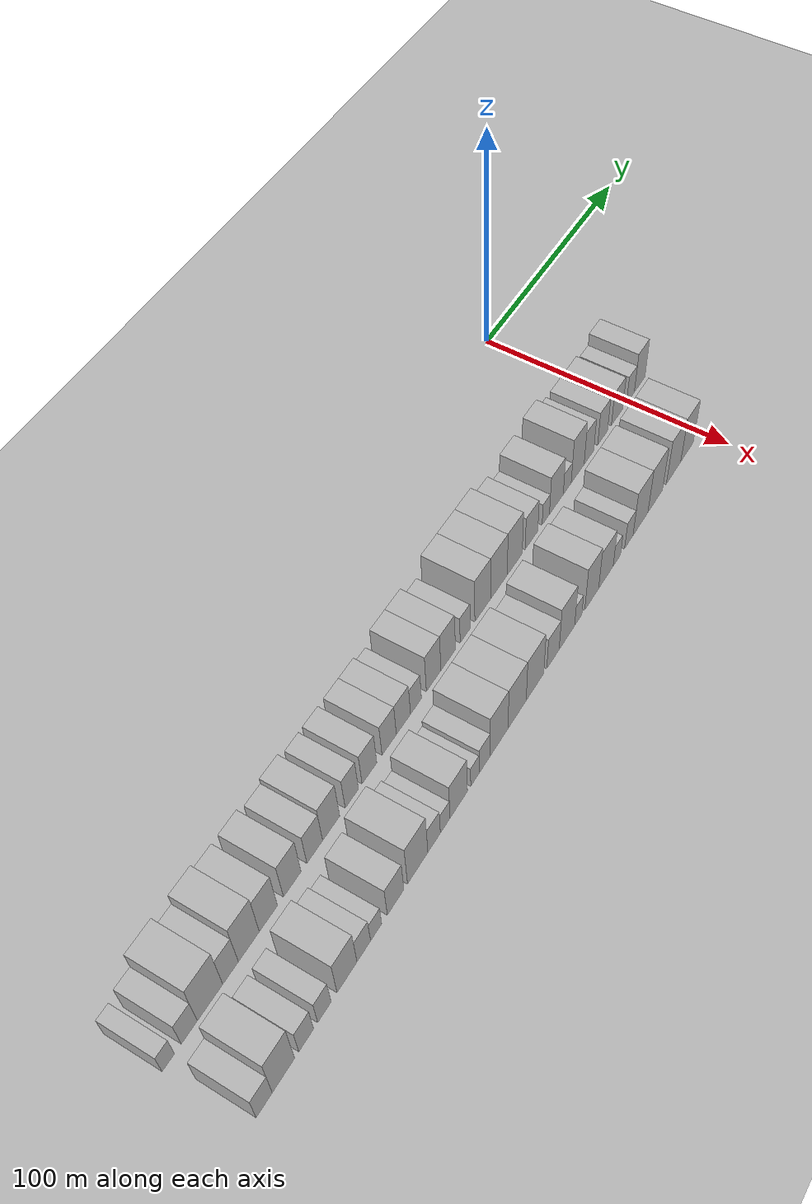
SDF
<sdf version="1.6">
 <world name="default">
  <include><name>ground_plane_1</name><uri>model://HANNAS_ground_plane</uri></include>
  <include>
   <name>ground_plane_2</name>
   <uri>model://HANNAS_ground_plane</uri>
   <pose>100 0 0  0 0 0</pose>
  </include>
  <model name="building_1">
   <static>1</static>
   <pose>50.0000 -275.2284 0 0.000000 0.000000 0.000000</pose>
   <link name="link">
    <pose>0 0 6.00 0 0 0</pose>
    <collision name="collision"><geometry><box><size>20.0000 5.5433 12.0000</size></box></geometry></collision>
    <visual name="visual">
     <cast_shadows>0</cast_shadows>
     <geometry><box><size>20.0000 5.5433 12.0000</size></box></geometry>
     <material>
      <script>
       <uri>model://HANNAS_wall/materials/scripts</uri>
       <uri>model://HANNAS_wall/materials/textures</uri>
       <name>vrc/HANNAS_wall</name>
      </script>
     </material>
    </visual>
   </link>
  </model>
  <model name="building_2">
   <static>1</static>
   <pose>50.0000 -265.7888 0 0.000000 0.000000 0.000000</pose>
   <link name="link">
    <pose>0 0 7.50 0 0 0</pose>
    <collision name="collision"><geometry><box><size>20.0000 7.3357 15.0000</size></box></geometry></collision>
    <visual name="visual">
     <cast_shadows>0</cast_shadows>
     <geometry><box><size>20.0000 7.3357 15.0000</size></box></geometry>
     <material>
      <script>
       <uri>model://HANNAS_wall/materials/scripts</uri>
       <uri>model://HANNAS_wall/materials/textures</uri>
       <name>vrc/HANNAS_wall</name>
      </script>
     </material>
    </visual>
   </link>
  </model>
  <model name="building_3">
   <static>1</static>
   <pose>50.0000 -256.1935 0 0.000000 0.000000 0.000000</pose>
   <link name="link">
    <pose>0 0 12.00 0 0 0</pose>
    <collision name="collision"><geometry><box><size>20.0000 11.8549 24.0000</size></box></geometry></collision>
    <visual name="visual">
     <cast_shadows>0</cast_shadows>
     <geometry><box><size>20.0000 11.8549 24.0000</size></box></geometry>
     <material>
      <script>
       <uri>model://HANNAS_wall/materials/scripts</uri>
       <uri>model://HANNAS_wall/materials/textures</uri>
       <name>vrc/HANNAS_wall</name>
      </script>
     </material>
    </visual>
   </link>
  </model>
  <model name="building_4">
   <static>1</static>
   <pose>50.0000 -246.5376 0 0.000000 0.000000 0.000000</pose>
   <link name="link">
    <pose>0 0 9.00 0 0 0</pose>
    <collision name="collision"><geometry><box><size>20.0000 7.4569 18.0000</size></box></geometry></collision>
    <visual name="visual">
     <cast_shadows>0</cast_shadows>
     <geometry><box><size>20.0000 7.4569 18.0000</size></box></geometry>
     <material>
      <script>
       <uri>model://HANNAS_wall/materials/scripts</uri>
       <uri>model://HANNAS_wall/materials/textures</uri>
       <name>vrc/HANNAS_wall</name>
      </script>
     </material>
    </visual>
   </link>
  </model>
  <model name="building_5">
   <static>1</static>
   <pose>50.0000 -237.7016 0 0.000000 0.000000 0.000000</pose>
   <link name="link">
    <pose>0 0 12.00 0 0 0</pose>
    <collision name="collision"><geometry><box><size>20.0000 10.2150 24.0000</size></box></geometry></collision>
    <visual name="visual">
     <cast_shadows>0</cast_shadows>
     <geometry><box><size>20.0000 10.2150 24.0000</size></box></geometry>
     <material>
      <script>
       <uri>model://HANNAS_wall/materials/scripts</uri>
       <uri>model://HANNAS_wall/materials/textures</uri>
       <name>vrc/HANNAS_wall</name>
      </script>
     </material>
    </visual>
   </link>
  </model>
  <model name="building_6">
   <static>1</static>
   <pose>50.0000 -228.0764 0 0.000000 0.000000 0.000000</pose>
   <link name="link">
    <pose>0 0 10.50 0 0 0</pose>
    <collision name="collision"><geometry><box><size>20.0000 9.0354 21.0000</size></box></geometry></collision>
    <visual name="visual">
     <cast_shadows>0</cast_shadows>
     <geometry><box><size>20.0000 9.0354 21.0000</size></box></geometry>
     <material>
      <script>
       <uri>model://HANNAS_wall/materials/scripts</uri>
       <uri>model://HANNAS_wall/materials/textures</uri>
       <name>vrc/HANNAS_wall</name>
      </script>
     </material>
    </visual>
   </link>
  </model>
  <model name="building_7">
   <static>1</static>
   <pose>50.0000 -216.0344 0 0.000000 0.000000 0.000000</pose>
   <link name="link">
    <pose>0 0 10.50 0 0 0</pose>
    <collision name="collision"><geometry><box><size>20.0000 9.0486 21.0000</size></box></geometry></collision>
    <visual name="visual">
     <cast_shadows>0</cast_shadows>
     <geometry><box><size>20.0000 9.0486 21.0000</size></box></geometry>
     <material>
      <script>
       <uri>model://HANNAS_wall/materials/scripts</uri>
       <uri>model://HANNAS_wall/materials/textures</uri>
       <name>vrc/HANNAS_wall</name>
      </script>
     </material>
    </visual>
   </link>
  </model>
  <model name="building_8">
   <static>1</static>
   <pose>50.0000 -204.3660 0 0.000000 0.000000 0.000000</pose>
   <link name="link">
    <pose>0 0 9.00 0 0 0</pose>
    <collision name="collision"><geometry><box><size>20.0000 8.2883 18.0000</size></box></geometry></collision>
    <visual name="visual">
     <cast_shadows>0</cast_shadows>
     <geometry><box><size>20.0000 8.2883 18.0000</size></box></geometry>
     <material>
      <script>
       <uri>model://HANNAS_wall/materials/scripts</uri>
       <uri>model://HANNAS_wall/materials/textures</uri>
       <name>vrc/HANNAS_wall</name>
      </script>
     </material>
    </visual>
   </link>
  </model>
  <model name="building_9">
   <static>1</static>
   <pose>50.0000 -195.6271 0 0.000000 0.000000 0.000000</pose>
   <link name="link">
    <pose>0 0 10.50 0 0 0</pose>
    <collision name="collision"><geometry><box><size>20.0000 9.1893 21.0000</size></box></geometry></collision>
    <visual name="visual">
     <cast_shadows>0</cast_shadows>
     <geometry><box><size>20.0000 9.1893 21.0000</size></box></geometry>
     <material>
      <script>
       <uri>model://HANNAS_wall/materials/scripts</uri>
       <uri>model://HANNAS_wall/materials/textures</uri>
       <name>vrc/HANNAS_wall</name>
      </script>
     </material>
    </visual>
   </link>
  </model>
  <model name="building_10">
   <static>1</static>
   <pose>50.0000 -184.3791 0 0.000000 0.000000 0.000000</pose>
   <link name="link">
    <pose>0 0 9.00 0 0 0</pose>
    <collision name="collision"><geometry><box><size>20.0000 7.3068 18.0000</size></box></geometry></collision>
    <visual name="visual">
     <cast_shadows>0</cast_shadows>
     <geometry><box><size>20.0000 7.3068 18.0000</size></box></geometry>
     <material>
      <script>
       <uri>model://HANNAS_wall/materials/scripts</uri>
       <uri>model://HANNAS_wall/materials/textures</uri>
       <name>vrc/HANNAS_wall</name>
      </script>
     </material>
    </visual>
   </link>
  </model>
  <model name="building_11">
   <static>1</static>
   <pose>50.0000 -174.5817 0 0.000000 0.000000 0.000000</pose>
   <link name="link">
    <pose>0 0 9.00 0 0 0</pose>
    <collision name="collision"><geometry><box><size>20.0000 8.2879 18.0000</size></box></geometry></collision>
    <visual name="visual">
     <cast_shadows>0</cast_shadows>
     <geometry><box><size>20.0000 8.2879 18.0000</size></box></geometry>
     <material>
      <script>
       <uri>model://HANNAS_wall/materials/scripts</uri>
       <uri>model://HANNAS_wall/materials/textures</uri>
       <name>vrc/HANNAS_wall</name>
      </script>
     </material>
    </visual>
   </link>
  </model>
  <model name="building_12">
   <static>1</static>
   <pose>50.0000 -163.2917 0 0.000000 0.000000 0.000000</pose>
   <link name="link">
    <pose>0 0 9.00 0 0 0</pose>
    <collision name="collision"><geometry><box><size>20.0000 8.2921 18.0000</size></box></geometry></collision>
    <visual name="visual">
     <cast_shadows>0</cast_shadows>
     <geometry><box><size>20.0000 8.2921 18.0000</size></box></geometry>
     <material>
      <script>
       <uri>model://HANNAS_wall/materials/scripts</uri>
       <uri>model://HANNAS_wall/materials/textures</uri>
       <name>vrc/HANNAS_wall</name>
      </script>
     </material>
    </visual>
   </link>
  </model>
  <model name="building_13">
   <static>1</static>
   <pose>50.0000 -154.9882 0 0.000000 0.000000 0.000000</pose>
   <link name="link">
    <pose>0 0 9.00 0 0 0</pose>
    <collision name="collision"><geometry><box><size>20.0000 8.3149 18.0000</size></box></geometry></collision>
    <visual name="visual">
     <cast_shadows>0</cast_shadows>
     <geometry><box><size>20.0000 8.3149 18.0000</size></box></geometry>
     <material>
      <script>
       <uri>model://HANNAS_wall/materials/scripts</uri>
       <uri>model://HANNAS_wall/materials/textures</uri>
       <name>vrc/HANNAS_wall</name>
      </script>
     </material>
    </visual>
   </link>
  </model>
  <model name="building_14">
   <static>1</static>
   <pose>50.0000 -147.5712 0 0.000000 0.000000 0.000000</pose>
   <link name="link">
    <pose>0 0 7.50 0 0 0</pose>
    <collision name="collision"><geometry><box><size>20.0000 6.5192 15.0000</size></box></geometry></collision>
    <visual name="visual">
     <cast_shadows>0</cast_shadows>
     <geometry><box><size>20.0000 6.5192 15.0000</size></box></geometry>
     <material>
      <script>
       <uri>model://HANNAS_wall/materials/scripts</uri>
       <uri>model://HANNAS_wall/materials/textures</uri>
       <name>vrc/HANNAS_wall</name>
      </script>
     </material>
    </visual>
   </link>
  </model>
  <model name="building_15">
   <static>1</static>
   <pose>50.0000 -136.8504 0 0.000000 0.000000 0.000000</pose>
   <link name="link">
    <pose>0 0 10.50 0 0 0</pose>
    <collision name="collision"><geometry><box><size>20.0000 8.9223 21.0000</size></box></geometry></collision>
    <visual name="visual">
     <cast_shadows>0</cast_shadows>
     <geometry><box><size>20.0000 8.9223 21.0000</size></box></geometry>
     <material>
      <script>
       <uri>model://HANNAS_wall/materials/scripts</uri>
       <uri>model://HANNAS_wall/materials/textures</uri>
       <name>vrc/HANNAS_wall</name>
      </script>
     </material>
    </visual>
   </link>
  </model>
  <model name="building_16">
   <static>1</static>
   <pose>50.0000 -127.8862 0 0.000000 0.000000 0.000000</pose>
   <link name="link">
    <pose>0 0 10.50 0 0 0</pose>
    <collision name="collision"><geometry><box><size>20.0000 9.0061 21.0000</size></box></geometry></collision>
    <visual name="visual">
     <cast_shadows>0</cast_shadows>
     <geometry><box><size>20.0000 9.0061 21.0000</size></box></geometry>
     <material>
      <script>
       <uri>model://HANNAS_wall/materials/scripts</uri>
       <uri>model://HANNAS_wall/materials/textures</uri>
       <name>vrc/HANNAS_wall</name>
      </script>
     </material>
    </visual>
   </link>
  </model>
  <model name="building_17">
   <static>1</static>
   <pose>50.0000 -117.1879 0 0.000000 0.000000 0.000000</pose>
   <link name="link">
    <pose>0 0 7.50 0 0 0</pose>
    <collision name="collision"><geometry><box><size>20.0000 6.3906 15.0000</size></box></geometry></collision>
    <visual name="visual">
     <cast_shadows>0</cast_shadows>
     <geometry><box><size>20.0000 6.3906 15.0000</size></box></geometry>
     <material>
      <script>
       <uri>model://HANNAS_wall/materials/scripts</uri>
       <uri>model://HANNAS_wall/materials/textures</uri>
       <name>vrc/HANNAS_wall</name>
      </script>
     </material>
    </visual>
   </link>
  </model>
  <model name="building_18">
   <static>1</static>
   <pose>50.0000 -105.8745 0 0.000000 0.000000 0.000000</pose>
   <link name="link">
    <pose>0 0 12.00 0 0 0</pose>
    <collision name="collision"><geometry><box><size>20.0000 10.2362 24.0000</size></box></geometry></collision>
    <visual name="visual">
     <cast_shadows>0</cast_shadows>
     <geometry><box><size>20.0000 10.2362 24.0000</size></box></geometry>
     <material>
      <script>
       <uri>model://HANNAS_wall/materials/scripts</uri>
       <uri>model://HANNAS_wall/materials/textures</uri>
       <name>vrc/HANNAS_wall</name>
      </script>
     </material>
    </visual>
   </link>
  </model>
  <model name="building_19">
   <static>1</static>
   <pose>50.0000 -95.1828 0 0.000000 0.000000 0.000000</pose>
   <link name="link">
    <pose>0 0 12.00 0 0 0</pose>
    <collision name="collision"><geometry><box><size>20.0000 11.1471 24.0000</size></box></geometry></collision>
    <visual name="visual">
     <cast_shadows>0</cast_shadows>
     <geometry><box><size>20.0000 11.1471 24.0000</size></box></geometry>
     <material>
      <script>
       <uri>model://HANNAS_wall/materials/scripts</uri>
       <uri>model://HANNAS_wall/materials/textures</uri>
       <name>vrc/HANNAS_wall</name>
      </script>
     </material>
    </visual>
   </link>
  </model>
  <model name="building_20">
   <static>1</static>
   <pose>50.0000 -84.5005 0 0.000000 0.000000 0.000000</pose>
   <link name="link">
    <pose>0 0 12.00 0 0 0</pose>
    <collision name="collision"><geometry><box><size>20.0000 10.2175 24.0000</size></box></geometry></collision>
    <visual name="visual">
     <cast_shadows>0</cast_shadows>
     <geometry><box><size>20.0000 10.2175 24.0000</size></box></geometry>
     <material>
      <script>
       <uri>model://HANNAS_wall/materials/scripts</uri>
       <uri>model://HANNAS_wall/materials/textures</uri>
       <name>vrc/HANNAS_wall</name>
      </script>
     </material>
    </visual>
   </link>
  </model>
  <model name="building_21">
   <static>1</static>
   <pose>50.0000 -72.9549 0 0.000000 0.000000 0.000000</pose>
   <link name="link">
    <pose>0 0 9.00 0 0 0</pose>
    <collision name="collision"><geometry><box><size>20.0000 8.8736 18.0000</size></box></geometry></collision>
    <visual name="visual">
     <cast_shadows>0</cast_shadows>
     <geometry><box><size>20.0000 8.8736 18.0000</size></box></geometry>
     <material>
      <script>
       <uri>model://HANNAS_wall/materials/scripts</uri>
       <uri>model://HANNAS_wall/materials/textures</uri>
       <name>vrc/HANNAS_wall</name>
      </script>
     </material>
    </visual>
   </link>
  </model>
  <model name="building_22">
   <static>1</static>
   <pose>50.0000 -62.8980 0 0.000000 0.000000 0.000000</pose>
   <link name="link">
    <pose>0 0 6.00 0 0 0</pose>
    <collision name="collision"><geometry><box><size>20.0000 5.2403 12.0000</size></box></geometry></collision>
    <visual name="visual">
     <cast_shadows>0</cast_shadows>
     <geometry><box><size>20.0000 5.2403 12.0000</size></box></geometry>
     <material>
      <script>
       <uri>model://HANNAS_wall/materials/scripts</uri>
       <uri>model://HANNAS_wall/materials/textures</uri>
       <name>vrc/HANNAS_wall</name>
      </script>
     </material>
    </visual>
   </link>
  </model>
  <model name="building_23">
   <static>1</static>
   <pose>50.0000 -55.2958 0 0.000000 0.000000 0.000000</pose>
   <link name="link">
    <pose>0 0 10.50 0 0 0</pose>
    <collision name="collision"><geometry><box><size>20.0000 9.9641 21.0000</size></box></geometry></collision>
    <visual name="visual">
     <cast_shadows>0</cast_shadows>
     <geometry><box><size>20.0000 9.9641 21.0000</size></box></geometry>
     <material>
      <script>
       <uri>model://HANNAS_wall/materials/scripts</uri>
       <uri>model://HANNAS_wall/materials/textures</uri>
       <name>vrc/HANNAS_wall</name>
      </script>
     </material>
    </visual>
   </link>
  </model>
  <model name="building_24">
   <static>1</static>
   <pose>50.0000 -47.3811 0 0.000000 0.000000 0.000000</pose>
   <link name="link">
    <pose>0 0 6.00 0 0 0</pose>
    <collision name="collision"><geometry><box><size>20.0000 5.8652 12.0000</size></box></geometry></collision>
    <visual name="visual">
     <cast_shadows>0</cast_shadows>
     <geometry><box><size>20.0000 5.8652 12.0000</size></box></geometry>
     <material>
      <script>
       <uri>model://HANNAS_wall/materials/scripts</uri>
       <uri>model://HANNAS_wall/materials/textures</uri>
       <name>vrc/HANNAS_wall</name>
      </script>
     </material>
    </visual>
   </link>
  </model>
  <model name="building_25">
   <static>1</static>
   <pose>50.0000 -39.6424 0 0.000000 0.000000 0.000000</pose>
   <link name="link">
    <pose>0 0 12.00 0 0 0</pose>
    <collision name="collision"><geometry><box><size>20.0000 9.6122 24.0000</size></box></geometry></collision>
    <visual name="visual">
     <cast_shadows>0</cast_shadows>
     <geometry><box><size>20.0000 9.6122 24.0000</size></box></geometry>
     <material>
      <script>
       <uri>model://HANNAS_wall/materials/scripts</uri>
       <uri>model://HANNAS_wall/materials/textures</uri>
       <name>vrc/HANNAS_wall</name>
      </script>
     </material>
    </visual>
   </link>
  </model>
  <model name="building_26">
   <static>1</static>
   <pose>50.0000 -31.1935 0 0.000000 0.000000 0.000000</pose>
   <link name="link">
    <pose>0 0 9.00 0 0 0</pose>
    <collision name="collision"><geometry><box><size>20.0000 7.2858 18.0000</size></box></geometry></collision>
    <visual name="visual">
     <cast_shadows>0</cast_shadows>
     <geometry><box><size>20.0000 7.2858 18.0000</size></box></geometry>
     <material>
      <script>
       <uri>model://HANNAS_wall/materials/scripts</uri>
       <uri>model://HANNAS_wall/materials/textures</uri>
       <name>vrc/HANNAS_wall</name>
      </script>
     </material>
    </visual>
   </link>
  </model>
  <model name="building_27">
   <static>1</static>
   <pose>50.0000 -20.7220 0 0.000000 0.000000 0.000000</pose>
   <link name="link">
    <pose>0 0 9.00 0 0 0</pose>
    <collision name="collision"><geometry><box><size>20.0000 7.6572 18.0000</size></box></geometry></collision>
    <visual name="visual">
     <cast_shadows>0</cast_shadows>
     <geometry><box><size>20.0000 7.6572 18.0000</size></box></geometry>
     <material>
      <script>
       <uri>model://HANNAS_wall/materials/scripts</uri>
       <uri>model://HANNAS_wall/materials/textures</uri>
       <name>vrc/HANNAS_wall</name>
      </script>
     </material>
    </visual>
   </link>
  </model>
  <model name="building_28">
   <static>1</static>
   <pose>50.0000 -9.4502 0 0.000000 0.000000 0.000000</pose>
   <link name="link">
    <pose>0 0 9.00 0 0 0</pose>
    <collision name="collision"><geometry><box><size>20.0000 8.8863 18.0000</size></box></geometry></collision>
    <visual name="visual">
     <cast_shadows>0</cast_shadows>
     <geometry><box><size>20.0000 8.8863 18.0000</size></box></geometry>
     <material>
      <script>
       <uri>model://HANNAS_wall/materials/scripts</uri>
       <uri>model://HANNAS_wall/materials/textures</uri>
       <name>vrc/HANNAS_wall</name>
      </script>
     </material>
    </visual>
   </link>
  </model>
  <model name="building_29">
   <static>1</static>
   <pose>50.0000 1.1949 0 0.000000 0.000000 0.000000</pose>
   <link name="link">
    <pose>0 0 7.50 0 0 0</pose>
    <collision name="collision"><geometry><box><size>20.0000 6.4039 15.0000</size></box></geometry></collision>
    <visual name="visual">
     <cast_shadows>0</cast_shadows>
     <geometry><box><size>20.0000 6.4039 15.0000</size></box></geometry>
     <material>
      <script>
       <uri>model://HANNAS_wall/materials/scripts</uri>
       <uri>model://HANNAS_wall/materials/textures</uri>
       <name>vrc/HANNAS_wall</name>
      </script>
     </material>
    </visual>
   </link>
  </model>
  <model name="building_30">
   <static>1</static>
   <pose>50.0000 8.7194 0 0.000000 0.000000 0.000000</pose>
   <link name="link">
    <pose>0 0 10.50 0 0 0</pose>
    <collision name="collision"><geometry><box><size>20.0000 8.6451 21.0000</size></box></geometry></collision>
    <visual name="visual">
     <cast_shadows>0</cast_shadows>
     <geometry><box><size>20.0000 8.6451 21.0000</size></box></geometry>
     <material>
      <script>
       <uri>model://HANNAS_wall/materials/scripts</uri>
       <uri>model://HANNAS_wall/materials/textures</uri>
       <name>vrc/HANNAS_wall</name>
      </script>
     </material>
    </visual>
   </link>
  </model>
  <model name="building_62">
   <static>1</static>
   <pose>79.0000 -271.2669 0 0.000000 0.000000 0.000000</pose>
   <link name="link">
    <pose>0 0 7.50 0 0 0</pose>
    <collision name="collision"><geometry><box><size>20.0000 7.4662 15.0000</size></box></geometry></collision>
    <visual name="visual">
     <cast_shadows>0</cast_shadows>
     <geometry><box><size>20.0000 7.4662 15.0000</size></box></geometry>
     <material>
      <script>
       <uri>model://HANNAS_wall/materials/scripts</uri>
       <uri>model://HANNAS_wall/materials/textures</uri>
       <name>vrc/HANNAS_wall</name>
      </script>
     </material>
    </visual>
   </link>
  </model>
  <model name="building_63">
   <static>1</static>
   <pose>79.0000 -262.2561 0 0.000000 0.000000 0.000000</pose>
   <link name="link">
    <pose>0 0 12.00 0 0 0</pose>
    <collision name="collision"><geometry><box><size>20.0000 10.5555 24.0000</size></box></geometry></collision>
    <visual name="visual">
     <cast_shadows>0</cast_shadows>
     <geometry><box><size>20.0000 10.5555 24.0000</size></box></geometry>
     <material>
      <script>
       <uri>model://HANNAS_wall/materials/scripts</uri>
       <uri>model://HANNAS_wall/materials/textures</uri>
       <name>vrc/HANNAS_wall</name>
      </script>
     </material>
    </visual>
   </link>
  </model>
  <model name="building_64">
   <static>1</static>
   <pose>79.0000 -251.3888 0 0.000000 0.000000 0.000000</pose>
   <link name="link">
    <pose>0 0 7.50 0 0 0</pose>
    <collision name="collision"><geometry><box><size>20.0000 7.1790 15.0000</size></box></geometry></collision>
    <visual name="visual">
     <cast_shadows>0</cast_shadows>
     <geometry><box><size>20.0000 7.1790 15.0000</size></box></geometry>
     <material>
      <script>
       <uri>model://HANNAS_wall/materials/scripts</uri>
       <uri>model://HANNAS_wall/materials/textures</uri>
       <name>vrc/HANNAS_wall</name>
      </script>
     </material>
    </visual>
   </link>
  </model>
  <model name="building_65">
   <static>1</static>
   <pose>79.0000 -242.4644 0 0.000000 0.000000 0.000000</pose>
   <link name="link">
    <pose>0 0 7.50 0 0 0</pose>
    <collision name="collision"><geometry><box><size>20.0000 6.6699 15.0000</size></box></geometry></collision>
    <visual name="visual">
     <cast_shadows>0</cast_shadows>
     <geometry><box><size>20.0000 6.6699 15.0000</size></box></geometry>
     <material>
      <script>
       <uri>model://HANNAS_wall/materials/scripts</uri>
       <uri>model://HANNAS_wall/materials/textures</uri>
       <name>vrc/HANNAS_wall</name>
      </script>
     </material>
    </visual>
   </link>
  </model>
  <model name="building_66">
   <static>1</static>
   <pose>79.0000 -231.0472 0 0.000000 0.000000 0.000000</pose>
   <link name="link">
    <pose>0 0 10.50 0 0 0</pose>
    <collision name="collision"><geometry><box><size>20.0000 10.1645 21.0000</size></box></geometry></collision>
    <visual name="visual">
     <cast_shadows>0</cast_shadows>
     <geometry><box><size>20.0000 10.1645 21.0000</size></box></geometry>
     <material>
      <script>
       <uri>model://HANNAS_wall/materials/scripts</uri>
       <uri>model://HANNAS_wall/materials/textures</uri>
       <name>vrc/HANNAS_wall</name>
      </script>
     </material>
    </visual>
   </link>
  </model>
  <model name="building_67">
   <static>1</static>
   <pose>79.0000 -222.4174 0 0.000000 0.000000 0.000000</pose>
   <link name="link">
    <pose>0 0 7.50 0 0 0</pose>
    <collision name="collision"><geometry><box><size>20.0000 7.0949 15.0000</size></box></geometry></collision>
    <visual name="visual">
     <cast_shadows>0</cast_shadows>
     <geometry><box><size>20.0000 7.0949 15.0000</size></box></geometry>
     <material>
      <script>
       <uri>model://HANNAS_wall/materials/scripts</uri>
       <uri>model://HANNAS_wall/materials/textures</uri>
       <name>vrc/HANNAS_wall</name>
      </script>
     </material>
    </visual>
   </link>
  </model>
  <model name="building_68">
   <static>1</static>
   <pose>79.0000 -215.9325 0 0.000000 0.000000 0.000000</pose>
   <link name="link">
    <pose>0 0 6.00 0 0 0</pose>
    <collision name="collision"><geometry><box><size>20.0000 5.8750 12.0000</size></box></geometry></collision>
    <visual name="visual">
     <cast_shadows>0</cast_shadows>
     <geometry><box><size>20.0000 5.8750 12.0000</size></box></geometry>
     <material>
      <script>
       <uri>model://HANNAS_wall/materials/scripts</uri>
       <uri>model://HANNAS_wall/materials/textures</uri>
       <name>vrc/HANNAS_wall</name>
      </script>
     </material>
    </visual>
   </link>
  </model>
  <model name="building_69">
   <static>1</static>
   <pose>79.0000 -205.5073 0 0.000000 0.000000 0.000000</pose>
   <link name="link">
    <pose>0 0 9.00 0 0 0</pose>
    <collision name="collision"><geometry><box><size>20.0000 8.9753 18.0000</size></box></geometry></collision>
    <visual name="visual">
     <cast_shadows>0</cast_shadows>
     <geometry><box><size>20.0000 8.9753 18.0000</size></box></geometry>
     <material>
      <script>
       <uri>model://HANNAS_wall/materials/scripts</uri>
       <uri>model://HANNAS_wall/materials/textures</uri>
       <name>vrc/HANNAS_wall</name>
      </script>
     </material>
    </visual>
   </link>
  </model>
  <model name="building_70">
   <static>1</static>
   <pose>79.0000 -193.3397 0 0.000000 0.000000 0.000000</pose>
   <link name="link">
    <pose>0 0 12.00 0 0 0</pose>
    <collision name="collision"><geometry><box><size>20.0000 11.3600 24.0000</size></box></geometry></collision>
    <visual name="visual">
     <cast_shadows>0</cast_shadows>
     <geometry><box><size>20.0000 11.3600 24.0000</size></box></geometry>
     <material>
      <script>
       <uri>model://HANNAS_wall/materials/scripts</uri>
       <uri>model://HANNAS_wall/materials/textures</uri>
       <name>vrc/HANNAS_wall</name>
      </script>
     </material>
    </visual>
   </link>
  </model>
  <model name="building_71">
   <static>1</static>
   <pose>79.0000 -184.0975 0 0.000000 0.000000 0.000000</pose>
   <link name="link">
    <pose>0 0 7.50 0 0 0</pose>
    <collision name="collision"><geometry><box><size>20.0000 7.1244 15.0000</size></box></geometry></collision>
    <visual name="visual">
     <cast_shadows>0</cast_shadows>
     <geometry><box><size>20.0000 7.1244 15.0000</size></box></geometry>
     <material>
      <script>
       <uri>model://HANNAS_wall/materials/scripts</uri>
       <uri>model://HANNAS_wall/materials/textures</uri>
       <name>vrc/HANNAS_wall</name>
      </script>
     </material>
    </visual>
   </link>
  </model>
  <model name="building_72">
   <static>1</static>
   <pose>79.0000 -177.7495 0 0.000000 0.000000 0.000000</pose>
   <link name="link">
    <pose>0 0 6.00 0 0 0</pose>
    <collision name="collision"><geometry><box><size>20.0000 5.5715 12.0000</size></box></geometry></collision>
    <visual name="visual">
     <cast_shadows>0</cast_shadows>
     <geometry><box><size>20.0000 5.5715 12.0000</size></box></geometry>
     <material>
      <script>
       <uri>model://HANNAS_wall/materials/scripts</uri>
       <uri>model://HANNAS_wall/materials/textures</uri>
       <name>vrc/HANNAS_wall</name>
      </script>
     </material>
    </visual>
   </link>
  </model>
  <model name="building_73">
   <static>1</static>
   <pose>79.0000 -169.8395 0 0.000000 0.000000 0.000000</pose>
   <link name="link">
    <pose>0 0 10.50 0 0 0</pose>
    <collision name="collision"><geometry><box><size>20.0000 10.2485 21.0000</size></box></geometry></collision>
    <visual name="visual">
     <cast_shadows>0</cast_shadows>
     <geometry><box><size>20.0000 10.2485 21.0000</size></box></geometry>
     <material>
      <script>
       <uri>model://HANNAS_wall/materials/scripts</uri>
       <uri>model://HANNAS_wall/materials/textures</uri>
       <name>vrc/HANNAS_wall</name>
      </script>
     </material>
    </visual>
   </link>
  </model>
  <model name="building_74">
   <static>1</static>
   <pose>79.0000 -160.1964 0 0.000000 0.000000 0.000000</pose>
   <link name="link">
    <pose>0 0 6.00 0 0 0</pose>
    <collision name="collision"><geometry><box><size>20.0000 5.0376 12.0000</size></box></geometry></collision>
    <visual name="visual">
     <cast_shadows>0</cast_shadows>
     <geometry><box><size>20.0000 5.0376 12.0000</size></box></geometry>
     <material>
      <script>
       <uri>model://HANNAS_wall/materials/scripts</uri>
       <uri>model://HANNAS_wall/materials/textures</uri>
       <name>vrc/HANNAS_wall</name>
      </script>
     </material>
    </visual>
   </link>
  </model>
  <model name="building_75">
   <static>1</static>
   <pose>79.0000 -154.3093 0 0.000000 0.000000 0.000000</pose>
   <link name="link">
    <pose>0 0 7.50 0 0 0</pose>
    <collision name="collision"><geometry><box><size>20.0000 6.7368 15.0000</size></box></geometry></collision>
    <visual name="visual">
     <cast_shadows>0</cast_shadows>
     <geometry><box><size>20.0000 6.7368 15.0000</size></box></geometry>
     <material>
      <script>
       <uri>model://HANNAS_wall/materials/scripts</uri>
       <uri>model://HANNAS_wall/materials/textures</uri>
       <name>vrc/HANNAS_wall</name>
      </script>
     </material>
    </visual>
   </link>
  </model>
  <model name="building_76">
   <static>1</static>
   <pose>79.0000 -145.4016 0 0.000000 0.000000 0.000000</pose>
   <link name="link">
    <pose>0 0 12.00 0 0 0</pose>
    <collision name="collision"><geometry><box><size>20.0000 11.0785 24.0000</size></box></geometry></collision>
    <visual name="visual">
     <cast_shadows>0</cast_shadows>
     <geometry><box><size>20.0000 11.0785 24.0000</size></box></geometry>
     <material>
      <script>
       <uri>model://HANNAS_wall/materials/scripts</uri>
       <uri>model://HANNAS_wall/materials/textures</uri>
       <name>vrc/HANNAS_wall</name>
      </script>
     </material>
    </visual>
   </link>
  </model>
  <model name="building_77">
   <static>1</static>
   <pose>79.0000 -134.0732 0 0.000000 0.000000 0.000000</pose>
   <link name="link">
    <pose>0 0 12.00 0 0 0</pose>
    <collision name="collision"><geometry><box><size>20.0000 11.5784 24.0000</size></box></geometry></collision>
    <visual name="visual">
     <cast_shadows>0</cast_shadows>
     <geometry><box><size>20.0000 11.5784 24.0000</size></box></geometry>
     <material>
      <script>
       <uri>model://HANNAS_wall/materials/scripts</uri>
       <uri>model://HANNAS_wall/materials/textures</uri>
       <name>vrc/HANNAS_wall</name>
      </script>
     </material>
    </visual>
   </link>
  </model>
  <model name="building_78">
   <static>1</static>
   <pose>79.0000 -122.5423 0 0.000000 0.000000 0.000000</pose>
   <link name="link">
    <pose>0 0 12.00 0 0 0</pose>
    <collision name="collision"><geometry><box><size>20.0000 11.4833 24.0000</size></box></geometry></collision>
    <visual name="visual">
     <cast_shadows>0</cast_shadows>
     <geometry><box><size>20.0000 11.4833 24.0000</size></box></geometry>
     <material>
      <script>
       <uri>model://HANNAS_wall/materials/scripts</uri>
       <uri>model://HANNAS_wall/materials/textures</uri>
       <name>vrc/HANNAS_wall</name>
      </script>
     </material>
    </visual>
   </link>
  </model>
  <model name="building_79">
   <static>1</static>
   <pose>79.0000 -110.6660 0 0.000000 0.000000 0.000000</pose>
   <link name="link">
    <pose>0 0 9.00 0 0 0</pose>
    <collision name="collision"><geometry><box><size>20.0000 8.2694 18.0000</size></box></geometry></collision>
    <visual name="visual">
     <cast_shadows>0</cast_shadows>
     <geometry><box><size>20.0000 8.2694 18.0000</size></box></geometry>
     <material>
      <script>
       <uri>model://HANNAS_wall/materials/scripts</uri>
       <uri>model://HANNAS_wall/materials/textures</uri>
       <name>vrc/HANNAS_wall</name>
      </script>
     </material>
    </visual>
   </link>
  </model>
  <model name="building_80">
   <static>1</static>
   <pose>79.0000 -101.2624 0 0.000000 0.000000 0.000000</pose>
   <link name="link">
    <pose>0 0 12.00 0 0 0</pose>
    <collision name="collision"><geometry><box><size>20.0000 10.5377 24.0000</size></box></geometry></collision>
    <visual name="visual">
     <cast_shadows>0</cast_shadows>
     <geometry><box><size>20.0000 10.5377 24.0000</size></box></geometry>
     <material>
      <script>
       <uri>model://HANNAS_wall/materials/scripts</uri>
       <uri>model://HANNAS_wall/materials/textures</uri>
       <name>vrc/HANNAS_wall</name>
      </script>
     </material>
    </visual>
   </link>
  </model>
  <model name="building_81">
   <static>1</static>
   <pose>79.0000 -93.4515 0 0.000000 0.000000 0.000000</pose>
   <link name="link">
    <pose>0 0 6.00 0 0 0</pose>
    <collision name="collision"><geometry><box><size>20.0000 5.0841 12.0000</size></box></geometry></collision>
    <visual name="visual">
     <cast_shadows>0</cast_shadows>
     <geometry><box><size>20.0000 5.0841 12.0000</size></box></geometry>
     <material>
      <script>
       <uri>model://HANNAS_wall/materials/scripts</uri>
       <uri>model://HANNAS_wall/materials/textures</uri>
       <name>vrc/HANNAS_wall</name>
      </script>
     </material>
    </visual>
   </link>
  </model>
  <model name="building_82">
   <static>1</static>
   <pose>79.0000 -83.9888 0 0.000000 0.000000 0.000000</pose>
   <link name="link">
    <pose>0 0 12.00 0 0 0</pose>
    <collision name="collision"><geometry><box><size>20.0000 9.8413 24.0000</size></box></geometry></collision>
    <visual name="visual">
     <cast_shadows>0</cast_shadows>
     <geometry><box><size>20.0000 9.8413 24.0000</size></box></geometry>
     <material>
      <script>
       <uri>model://HANNAS_wall/materials/scripts</uri>
       <uri>model://HANNAS_wall/materials/textures</uri>
       <name>vrc/HANNAS_wall</name>
      </script>
     </material>
    </visual>
   </link>
  </model>
  <model name="building_83">
   <static>1</static>
   <pose>79.0000 -73.8246 0 0.000000 0.000000 0.000000</pose>
   <link name="link">
    <pose>0 0 10.50 0 0 0</pose>
    <collision name="collision"><geometry><box><size>20.0000 10.4871 21.0000</size></box></geometry></collision>
    <visual name="visual">
     <cast_shadows>0</cast_shadows>
     <geometry><box><size>20.0000 10.4871 21.0000</size></box></geometry>
     <material>
      <script>
       <uri>model://HANNAS_wall/materials/scripts</uri>
       <uri>model://HANNAS_wall/materials/textures</uri>
       <name>vrc/HANNAS_wall</name>
      </script>
     </material>
    </visual>
   </link>
  </model>
  <model name="building_84">
   <static>1</static>
   <pose>79.0000 -65.8677 0 0.000000 0.000000 0.000000</pose>
   <link name="link">
    <pose>0 0 6.00 0 0 0</pose>
    <collision name="collision"><geometry><box><size>20.0000 5.4267 12.0000</size></box></geometry></collision>
    <visual name="visual">
     <cast_shadows>0</cast_shadows>
     <geometry><box><size>20.0000 5.4267 12.0000</size></box></geometry>
     <material>
      <script>
       <uri>model://HANNAS_wall/materials/scripts</uri>
       <uri>model://HANNAS_wall/materials/textures</uri>
       <name>vrc/HANNAS_wall</name>
      </script>
     </material>
    </visual>
   </link>
  </model>
  <model name="building_85">
   <static>1</static>
   <pose>79.0000 -56.9861 0 0.000000 0.000000 0.000000</pose>
   <link name="link">
    <pose>0 0 7.50 0 0 0</pose>
    <collision name="collision"><geometry><box><size>20.0000 6.3366 15.0000</size></box></geometry></collision>
    <visual name="visual">
     <cast_shadows>0</cast_shadows>
     <geometry><box><size>20.0000 6.3366 15.0000</size></box></geometry>
     <material>
      <script>
       <uri>model://HANNAS_wall/materials/scripts</uri>
       <uri>model://HANNAS_wall/materials/textures</uri>
       <name>vrc/HANNAS_wall</name>
      </script>
     </material>
    </visual>
   </link>
  </model>
  <model name="building_86">
   <static>1</static>
   <pose>79.0000 -48.1402 0 0.000000 0.000000 0.000000</pose>
   <link name="link">
    <pose>0 0 12.00 0 0 0</pose>
    <collision name="collision"><geometry><box><size>20.0000 11.3552 24.0000</size></box></geometry></collision>
    <visual name="visual">
     <cast_shadows>0</cast_shadows>
     <geometry><box><size>20.0000 11.3552 24.0000</size></box></geometry>
     <material>
      <script>
       <uri>model://HANNAS_wall/materials/scripts</uri>
       <uri>model://HANNAS_wall/materials/textures</uri>
       <name>vrc/HANNAS_wall</name>
      </script>
     </material>
    </visual>
   </link>
  </model>
  <model name="building_87">
   <static>1</static>
   <pose>79.0000 -36.8027 0 0.000000 0.000000 0.000000</pose>
   <link name="link">
    <pose>0 0 12.00 0 0 0</pose>
    <collision name="collision"><geometry><box><size>20.0000 11.3198 24.0000</size></box></geometry></collision>
    <visual name="visual">
     <cast_shadows>0</cast_shadows>
     <geometry><box><size>20.0000 11.3198 24.0000</size></box></geometry>
     <material>
      <script>
       <uri>model://HANNAS_wall/materials/scripts</uri>
       <uri>model://HANNAS_wall/materials/textures</uri>
       <name>vrc/HANNAS_wall</name>
      </script>
     </material>
    </visual>
   </link>
  </model>
  <model name="building_88">
   <static>1</static>
   <pose>79.0000 -22.3580 0 0.000000 0.000000 0.000000</pose>
   <link name="link">
    <pose>0 0 12.00 0 0 0</pose>
    <collision name="collision"><geometry><box><size>20.0000 11.5696 24.0000</size></box></geometry></collision>
    <visual name="visual">
     <cast_shadows>0</cast_shadows>
     <geometry><box><size>20.0000 11.5696 24.0000</size></box></geometry>
     <material>
      <script>
       <uri>model://HANNAS_wall/materials/scripts</uri>
       <uri>model://HANNAS_wall/materials/textures</uri>
       <name>vrc/HANNAS_wall</name>
      </script>
     </material>
    </visual>
   </link>
  </model>
  <model name="building_89">
   <static>1</static>
   <pose>79.0000 -11.4908 0 0.000000 0.000000 0.000000</pose>
   <link name="link">
    <pose>0 0 12.00 0 0 0</pose>
    <collision name="collision"><geometry><box><size>20.0000 10.1650 24.0000</size></box></geometry></collision>
    <visual name="visual">
     <cast_shadows>0</cast_shadows>
     <geometry><box><size>20.0000 10.1650 24.0000</size></box></geometry>
     <material>
      <script>
       <uri>model://HANNAS_wall/materials/scripts</uri>
       <uri>model://HANNAS_wall/materials/textures</uri>
       <name>vrc/HANNAS_wall</name>
      </script>
     </material>
    </visual>
   </link>
  </model>
 </world>
</sdf>
